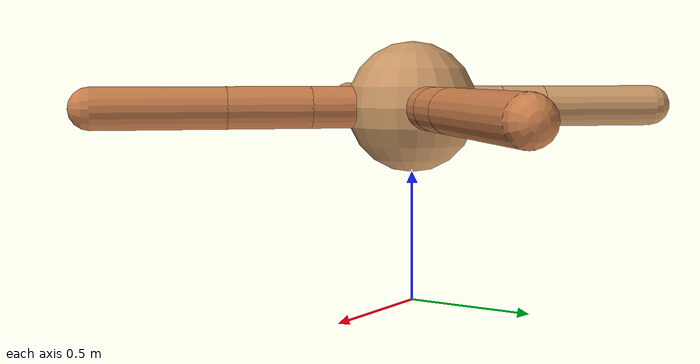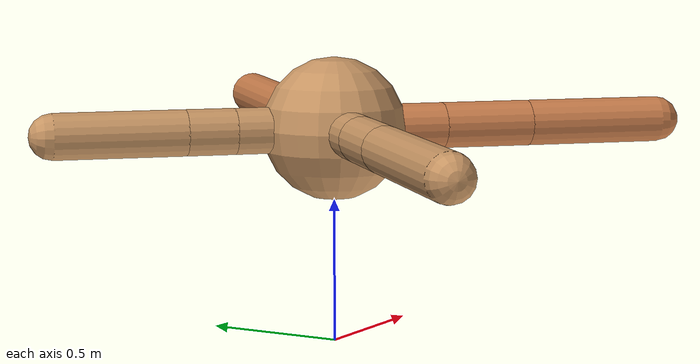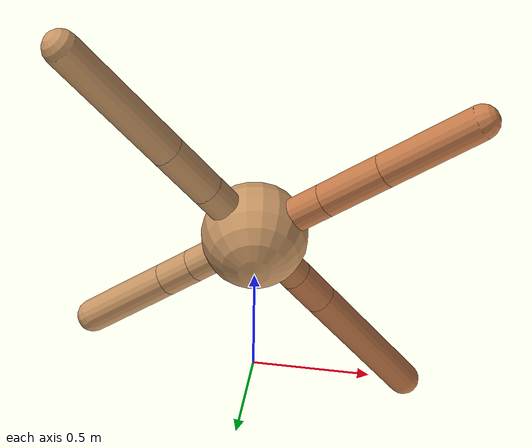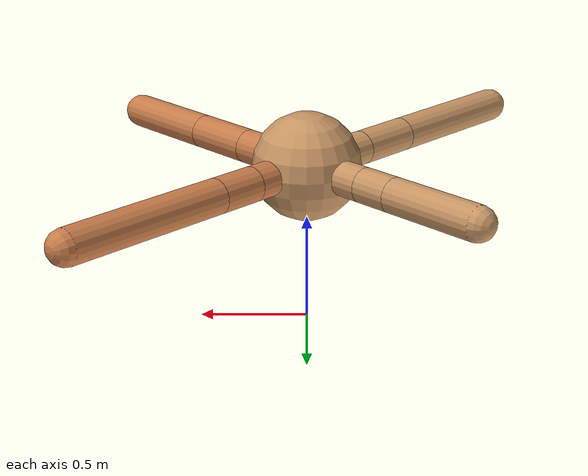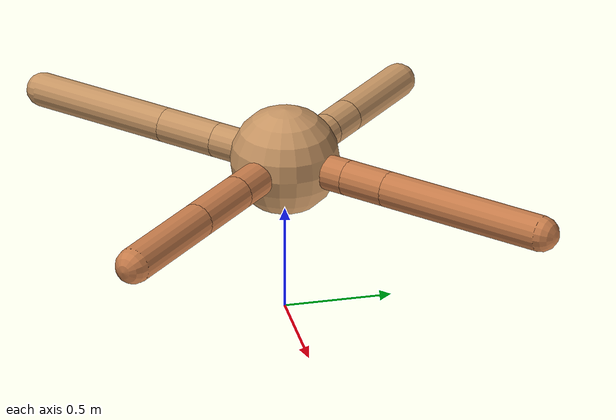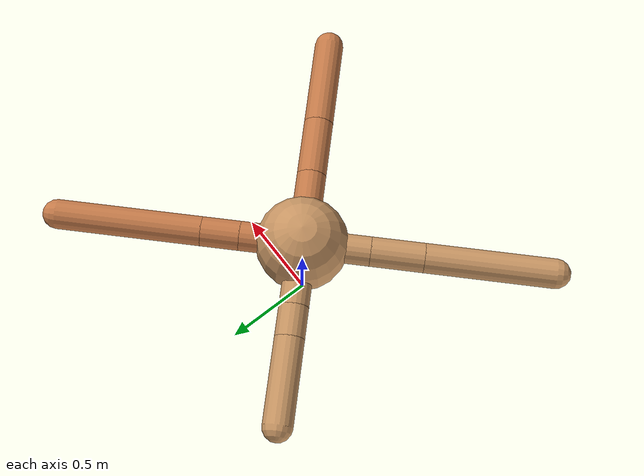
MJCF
<mujoco model="ant">
  <compiler angle="degree" coordinate="local" inertiafromgeom="true" />
  <option integrator="RK4" timestep="0.01" />
  <custom>
    <numeric data="0.0 0.0 0.55 1.0 0.0 0.0 0.0 0.0 1.0 0.0 -1.0 0.0 -1.0 0.0 1.0" name="init_qpos" />
  </custom>
  <default>
    <joint armature="1" damping="1" limited="true" />
    <geom conaffinity="0" condim="3" density="5.0" friction="1.5 0.1 0.1" margin="0.01" rgba="0.8 0.6 0.4 1" />
  </default>
  <worldbody>
    <body name="torso" pos="0 0 0.75">
      <geom name="torso_geom" pos="0 0 0" size="0.25" type="sphere" />

      <body name="front_left_leg" pos="0 0 0">
        <geom fromto="0.0 0.0 0.0 0.23583710097609836 0.23583710097609836 0.0" name="aux_1_geom" size="0.08" type="capsule" rgba=".8 .5 .3 1" />
        <body name="aux_1" pos="0.23583710097609836 0.23583710097609836 0.0">
          <joint axis="0 0 1" name="hip_1" pos="0.0 0.0 0.0" range="-40 40" type="hinge" />
          <geom fromto="0.0 0.0 0.0 0.14598276346297684 0.14598276346297684 0.0" name="left_leg_geom" size="0.08" type="capsule" rgba=".8 .5 .3 1" />
          <body pos="0.14598276346297684 0.14598276346297684 0.0" name="front_left_foot">
            <joint axis="-1 1 0" name="ankle_1" pos="0.0 0.0 0.0" range="30 100" type="hinge" />
            <geom fromto="0.0 0.0 0.0 0.5520575926331261 0.5520575926331261 0.0" name="left_ankle_geom" size="0.08" type="capsule" rgba=".8 .5 .3 1" />
          </body>
        </body>
      </body>
      <body name="front_right_leg" pos="0 0 0">
        <geom fromto="0.0 0.0 0.0 -0.24887966181149646 0.24887966181149646 0.0" name="aux_2_geom" size="0.08" type="capsule" />
        <body name="aux_2" pos="-0.24887966181149646 0.24887966181149646 0.0">
          <joint axis="0 0 1" name="hip_2" pos="0.0 0.0 0.0" range="-40 40" type="hinge" />
          <geom fromto="0.0 0.0 0.0 -0.12041264757619217 0.12041264757619217 0.0" name="right_leg_geom" size="0.08" type="capsule" />
          <body pos="-0.12041264757619217 0.12041264757619217 0.0" name="front_right_foot">
            <joint axis="1 1 0" name="ankle_2" pos="0.0 0.0 0.0" range="-100 -30" type="hinge" />
            <geom fromto="0.0 0.0 0.0 -0.32369432329042996 0.32369432329042996 0.0" name="right_ankle_geom" size="0.08" type="capsule" />
          </body>
        </body>
      </body>
      <body name="left_back_leg" pos="0 0 0">
        <geom fromto="0.0 0.0 0.0 -0.2565753170894679 -0.2565753170894679 0.0" name="aux_3_geom" size="0.08" type="capsule" />
        <body name="aux_3" pos="-0.2565753170894679 -0.2565753170894679 0.0">
          <joint axis="0 0 1" name="hip_3" pos="0.0 0.0 0.0" range="-40 40" type="hinge" />
          <geom fromto="0.0 0.0 0.0 -0.2019276658929261 -0.2019276658929261 0.0" name="back_leg_geom" size="0.08" type="capsule" />
          <body pos="-0.2019276658929261 -0.2019276658929261 0.0" name="left_back_foot">
            <joint axis="-1 1 0" name="ankle_3" pos="0.0 0.0 0.0" range="-100 -30" type="hinge" />
            <geom fromto="0.0 0.0 0.0 -0.48911936784195653 -0.48911936784195653 0.0" name="third_ankle_geom" size="0.08" type="capsule" />
          </body>
        </body>
      </body>
      <body name="right_back_leg" pos="0 0 0">
        <geom fromto="0.0 0.0 0.0 0.2777673905566532 -0.2777673905566532 0.0" name="aux_4_geom" size="0.08" type="capsule" rgba=".8 .5 .3 1" />
        <body name="aux_4" pos="0.2777673905566532 -0.2777673905566532 0.0">
          <joint axis="0 0 1" name="hip_4" pos="0.0 0.0 0.0" range="-40 40" type="hinge" />
          <geom fromto="0.0 0.0 0.0 0.22270100365071094 -0.22270100365071094 0.0" name="rightback_leg_geom" size="0.08" type="capsule" rgba=".8 .5 .3 1" />
          <body pos="0.22270100365071094 -0.22270100365071094 0.0" name="right_back_foot">
            <joint axis="1 1 0" name="ankle_4" pos="0.0 0.0 0.0" range="30 100" type="hinge" />
            <geom fromto="0.0 0.0 0.0 0.3454846657802986 -0.3454846657802986 0.0" name="fourth_ankle_geom" size="0.08" type="capsule" rgba=".8 .5 .3 1" />
          </body>
        </body>
      </body>
    </body>
  </worldbody>
  <actuator>
    <motor ctrllimited="true" ctrlrange="-1.0 1.0" joint="hip_4" gear="150" />
    <motor ctrllimited="true" ctrlrange="-1.0 1.0" joint="ankle_4" gear="150" />
    <motor ctrllimited="true" ctrlrange="-1.0 1.0" joint="hip_1" gear="150" />
    <motor ctrllimited="true" ctrlrange="-1.0 1.0" joint="ankle_1" gear="150" />
    <motor ctrllimited="true" ctrlrange="-1.0 1.0" joint="hip_2" gear="150" />
    <motor ctrllimited="true" ctrlrange="-1.0 1.0" joint="ankle_2" gear="150" />
    <motor ctrllimited="true" ctrlrange="-1.0 1.0" joint="hip_3" gear="150" />
    <motor ctrllimited="true" ctrlrange="-1.0 1.0" joint="ankle_3" gear="150" />
  </actuator>
</mujoco>
